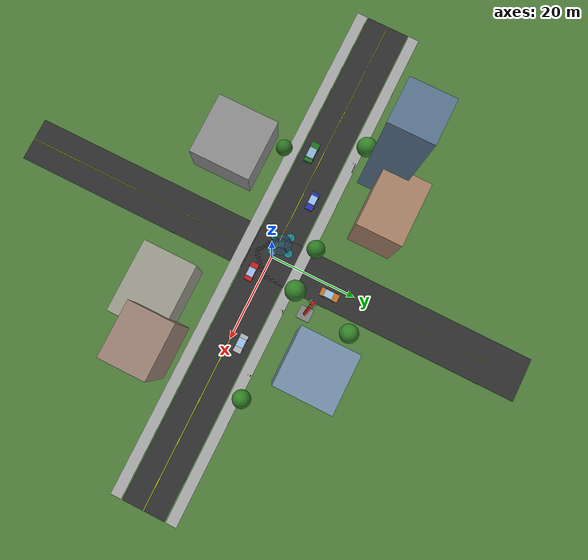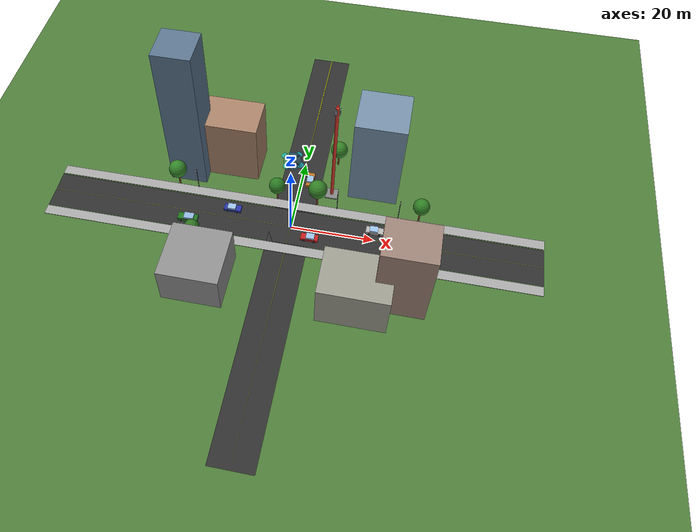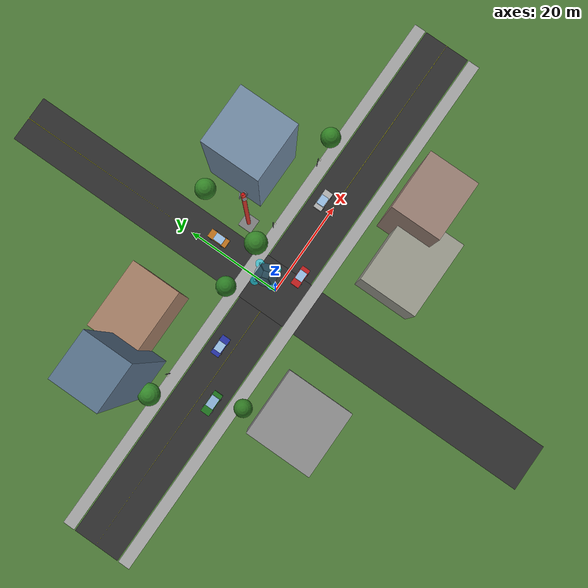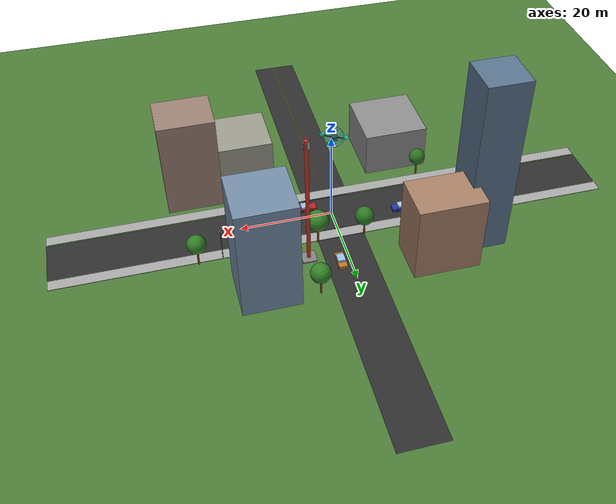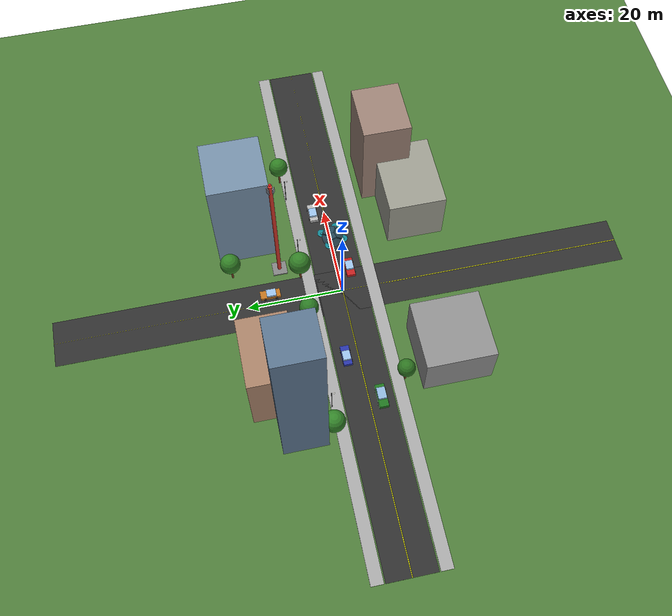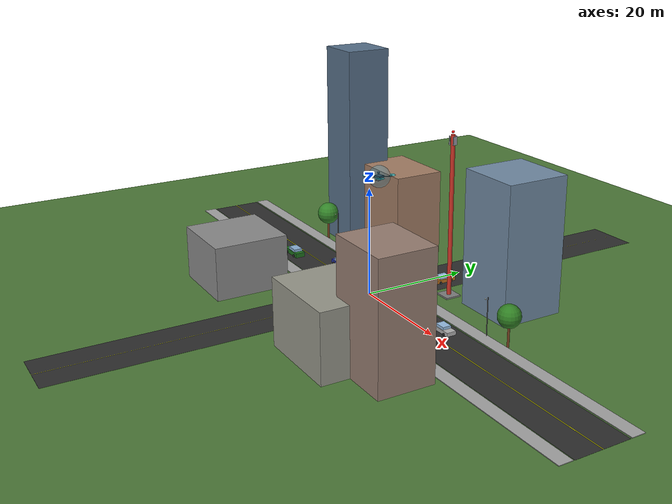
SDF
<?xml version="1.0" encoding="UTF-8"?>
<sdf version="1.9">
  <world name="vla_6g_photo">

    <physics type="ode">
      <max_step_size>0.004</max_step_size>
      <real_time_factor>1.0</real_time_factor>
      <real_time_update_rate>250</real_time_update_rate>
    </physics>
    <gravity>0 0 -9.8</gravity>

    <plugin filename="gz-sim-physics-system" name="gz::sim::systems::Physics"/>
    <plugin filename="gz-sim-scene-broadcaster-system" name="gz::sim::systems::SceneBroadcaster"/>
    <plugin filename="gz-sim-user-commands-system" name="gz::sim::systems::UserCommands"/>
    <plugin filename="gz-sim-sensors-system" name="gz::sim::systems::Sensors">
      <render_engine>ogre2</render_engine>
    </plugin>

    <!-- Bright daytime sky -->
    <scene>
      <grid>false</grid>
      <ambient>0.6 0.6 0.6 1</ambient>
      <background>0.53 0.81 0.92 1</background>
      <shadows>true</shadows>
    </scene>

    <!-- Sun -->
    <light name="sun" type="directional">
      <pose>0 0 500 0 0 0</pose>
      <cast_shadows>true</cast_shadows>
      <intensity>1.2</intensity>
      <direction>-0.4 0.2 -0.85</direction>
      <diffuse>1.0 0.98 0.92 1</diffuse>
      <specular>0.4 0.4 0.4 1</specular>
      <attenuation><range>2000</range><linear>0</linear><constant>1</constant><quadratic>0</quadratic></attenuation>
    </light>
    <light name="fill" type="directional">
      <pose>0 0 300 0 0 0</pose>
      <cast_shadows>false</cast_shadows>
      <intensity>0.3</intensity>
      <direction>0.5 -0.3 -0.7</direction>
      <diffuse>0.7 0.75 0.85 1</diffuse>
      <specular>0.1 0.1 0.1 1</specular>
    </light>

    <!-- Ground plane -->
    <model name="ground_plane">
      <static>true</static>
      <link name="link">
        <collision name="c"><geometry><plane><normal>0 0 1</normal><size>300 300</size></plane></geometry></collision>
        <visual name="v"><geometry><plane><normal>0 0 1</normal><size>300 300</size></plane></geometry>
          <material><ambient>0.25 0.42 0.18 1</ambient><diffuse>0.3 0.48 0.22 1</diffuse></material>
        </visual>
      </link>
    </model>

    <!-- ROADS -->
    <model name="road_x"><static>true</static><pose>0 0 0.01 0 0 0</pose>
      <link name="link">
        <visual name="road"><geometry><box><size>120 10 0.02</size></box></geometry>
          <material><ambient>0.15 0.15 0.15 1</ambient><diffuse>0.18 0.18 0.18 1</diffuse></material></visual>
        <visual name="cline"><pose>0 0 0.005 0 0 0</pose><geometry><box><size>120 0.15 0.01</size></box></geometry>
          <material><ambient>0.9 0.9 0.0 1</ambient><diffuse>1.0 1.0 0.0 1</diffuse></material></visual>
      </link>
    </model>
    <model name="road_y"><static>true</static><pose>0 0 0.01 0 0 1.5708</pose>
      <link name="link">
        <visual name="road"><geometry><box><size>120 10 0.02</size></box></geometry>
          <material><ambient>0.15 0.15 0.15 1</ambient><diffuse>0.18 0.18 0.18 1</diffuse></material></visual>
        <visual name="cline"><pose>0 0 0.005 0 0 0</pose><geometry><box><size>120 0.15 0.01</size></box></geometry>
          <material><ambient>0.9 0.9 0.0 1</ambient><diffuse>1.0 1.0 0.0 1</diffuse></material></visual>
      </link>
    </model>
    <!-- Sidewalks -->
    <model name="sw_n"><static>true</static><pose>0 6.5 0.06 0 0 0</pose>
      <link name="l"><visual name="v"><geometry><box><size>120 2.5 0.12</size></box></geometry>
        <material><ambient>0.55 0.55 0.55 1</ambient><diffuse>0.65 0.65 0.65 1</diffuse></material></visual></link>
    </model>
    <model name="sw_s"><static>true</static><pose>0 -6.5 0.06 0 0 0</pose>
      <link name="l"><visual name="v"><geometry><box><size>120 2.5 0.12</size></box></geometry>
        <material><ambient>0.55 0.55 0.55 1</ambient><diffuse>0.65 0.65 0.65 1</diffuse></material></visual></link>
    </model>

    <!-- BUILDINGS -->
    <model name="b1"><static>true</static><pose>18 18 12.5 0 0 0</pose>
      <link name="l"><collision name="c"><geometry><box><size>12 12 25</size></box></geometry></collision>
        <visual name="v"><geometry><box><size>12 12 25</size></box></geometry>
          <material><ambient>0.4 0.5 0.6 1</ambient><diffuse>0.45 0.55 0.65 1</diffuse></material></visual></link>
    </model>
    <model name="b2"><static>true</static><pose>-18 18 8.5 0 0 0</pose>
      <link name="l"><collision name="c"><geometry><box><size>14 10 17</size></box></geometry></collision>
        <visual name="v"><geometry><box><size>14 10 17</size></box></geometry>
          <material><ambient>0.6 0.45 0.35 1</ambient><diffuse>0.65 0.5 0.4 1</diffuse></material></visual></link>
    </model>
    <model name="b3"><static>true</static><pose>18 -18 6 0 0 0</pose>
      <link name="l"><collision name="c"><geometry><box><size>16 12 12</size></box></geometry></collision>
        <visual name="v"><geometry><box><size>16 12 12</size></box></geometry>
          <material><ambient>0.55 0.55 0.5 1</ambient><diffuse>0.6 0.6 0.55 1</diffuse></material></visual></link>
    </model>
    <model name="b4"><static>true</static><pose>-18 -18 5 0 0 0</pose>
      <link name="l"><collision name="c"><geometry><box><size>14 14 10</size></box></geometry></collision>
        <visual name="v"><geometry><box><size>14 14 10</size></box></geometry>
          <material><ambient>0.45 0.45 0.45 1</ambient><diffuse>0.55 0.55 0.55 1</diffuse></material></visual></link>
    </model>
    <model name="b5"><static>true</static><pose>-28 14 20 0 0 0</pose>
      <link name="l"><collision name="c"><geometry><box><size>9 9 40</size></box></geometry></collision>
        <visual name="v"><geometry><box><size>9 9 40</size></box></geometry>
          <material><ambient>0.3 0.4 0.5 1</ambient><diffuse>0.35 0.45 0.55 1</diffuse></material></visual></link>
    </model>
    <model name="b6"><static>true</static><pose>28 -14 11 0 0 0</pose>
      <link name="l"><collision name="c"><geometry><box><size>12 10 22</size></box></geometry></collision>
        <visual name="v"><geometry><box><size>12 10 22</size></box></geometry>
          <material><ambient>0.55 0.45 0.4 1</ambient><diffuse>0.6 0.5 0.45 1</diffuse></material></visual></link>
    </model>

    <!-- TREES -->
    <model name="t1"><static>true</static><pose>-30 8 0 0 0 0</pose>
      <link name="l">
        <visual name="trunk"><pose>0 0 2 0 0 0</pose><geometry><cylinder><radius>0.22</radius><length>4</length></cylinder></geometry>
          <material><ambient>0.35 0.2 0.1 1</ambient><diffuse>0.45 0.25 0.12 1</diffuse></material></visual>
        <visual name="f"><pose>0 0 5.5 0 0 0</pose><geometry><sphere><radius>2.2</radius></sphere></geometry>
          <material><ambient>0.15 0.42 0.12 1</ambient><diffuse>0.2 0.52 0.16 1</diffuse></material></visual>
      </link>
    </model>
    <model name="t2"><static>true</static><pose>-5 8 0 0 0 0.3</pose>
      <link name="l">
        <visual name="trunk"><pose>0 0 1.8 0 0 0</pose><geometry><cylinder><radius>0.2</radius><length>3.6</length></cylinder></geometry>
          <material><ambient>0.35 0.2 0.1 1</ambient><diffuse>0.45 0.25 0.12 1</diffuse></material></visual>
        <visual name="f"><pose>0 0 5 0 0 0</pose><geometry><sphere><radius>2.0</radius></sphere></geometry>
          <material><ambient>0.12 0.38 0.1 1</ambient><diffuse>0.17 0.48 0.14 1</diffuse></material></visual>
      </link>
    </model>
    <model name="t3"><static>true</static><pose>5 8 0 0 0 0.6</pose>
      <link name="l">
        <visual name="trunk"><pose>0 0 2.2 0 0 0</pose><geometry><cylinder><radius>0.22</radius><length>4.4</length></cylinder></geometry>
          <material><ambient>0.35 0.2 0.1 1</ambient><diffuse>0.45 0.25 0.12 1</diffuse></material></visual>
        <visual name="f"><pose>0 0 6 0 0 0</pose><geometry><sphere><radius>2.3</radius></sphere></geometry>
          <material><ambient>0.15 0.4 0.11 1</ambient><diffuse>0.2 0.5 0.15 1</diffuse></material></visual>
      </link>
    </model>
    <model name="t4"><static>true</static><pose>30 8 0 0 0 0.1</pose>
      <link name="l">
        <visual name="trunk"><pose>0 0 2 0 0 0</pose><geometry><cylinder><radius>0.2</radius><length>4</length></cylinder></geometry>
          <material><ambient>0.35 0.2 0.1 1</ambient><diffuse>0.45 0.25 0.12 1</diffuse></material></visual>
        <visual name="f"><pose>0 0 5.5 0 0 0</pose><geometry><sphere><radius>2.0</radius></sphere></geometry>
          <material><ambient>0.14 0.4 0.1 1</ambient><diffuse>0.19 0.5 0.14 1</diffuse></material></visual>
      </link>
    </model>
    <model name="t5"><static>true</static><pose>-22 -8 0 0 0 0.4</pose>
      <link name="l">
        <visual name="trunk"><pose>0 0 1.9 0 0 0</pose><geometry><cylinder><radius>0.19</radius><length>3.8</length></cylinder></geometry>
          <material><ambient>0.35 0.2 0.1 1</ambient><diffuse>0.45 0.25 0.12 1</diffuse></material></visual>
        <visual name="f"><pose>0 0 5 0 0 0</pose><geometry><sphere><radius>1.8</radius></sphere></geometry>
          <material><ambient>0.13 0.36 0.09 1</ambient><diffuse>0.18 0.46 0.13 1</diffuse></material></visual>
      </link>
    </model>
    <model name="t6"><static>true</static><pose>8 22 0 0 0 0.5</pose>
      <link name="l">
        <visual name="trunk"><pose>0 0 2 0 0 0</pose><geometry><cylinder><radius>0.2</radius><length>4</length></cylinder></geometry>
          <material><ambient>0.35 0.2 0.1 1</ambient><diffuse>0.45 0.25 0.12 1</diffuse></material></visual>
        <visual name="f"><pose>0 0 5.5 0 0 0</pose><geometry><sphere><radius>2.1</radius></sphere></geometry>
          <material><ambient>0.15 0.41 0.12 1</ambient><diffuse>0.2 0.51 0.15 1</diffuse></material></visual>
      </link>
    </model>

    <!-- LIGHT POLES -->
    <model name="lp1"><static>true</static><pose>-25 7.5 0 0 0 0</pose>
      <link name="l">
        <visual name="p"><pose>0 0 3.5 0 0 0</pose><geometry><cylinder><radius>0.08</radius><length>7</length></cylinder></geometry>
          <material><ambient>0.3 0.3 0.3 1</ambient><diffuse>0.4 0.4 0.4 1</diffuse></material></visual>
        <visual name="lamp"><pose>0 -0.5 6.8 0 0 0</pose><geometry><box><size>0.3 0.15 0.1</size></box></geometry>
          <material><ambient>1 1 0.8 1</ambient><diffuse>1 1 0.9 1</diffuse><emissive>0.6 0.6 0.4 1</emissive></material></visual>
      </link>
    </model>
    <model name="lp2"><static>true</static><pose>10 7.5 0 0 0 0</pose>
      <link name="l">
        <visual name="p"><pose>0 0 3.5 0 0 0</pose><geometry><cylinder><radius>0.08</radius><length>7</length></cylinder></geometry>
          <material><ambient>0.3 0.3 0.3 1</ambient><diffuse>0.4 0.4 0.4 1</diffuse></material></visual>
        <visual name="lamp"><pose>0 -0.5 6.8 0 0 0</pose><geometry><box><size>0.3 0.15 0.1</size></box></geometry>
          <material><ambient>1 1 0.8 1</ambient><diffuse>1 1 0.9 1</diffuse><emissive>0.6 0.6 0.4 1</emissive></material></visual>
      </link>
    </model>
    <model name="lp3"><static>true</static><pose>25 7.5 0 0 0 0</pose>
      <link name="l">
        <visual name="p"><pose>0 0 3.5 0 0 0</pose><geometry><cylinder><radius>0.08</radius><length>7</length></cylinder></geometry>
          <material><ambient>0.3 0.3 0.3 1</ambient><diffuse>0.4 0.4 0.4 1</diffuse></material></visual>
        <visual name="lamp"><pose>0 -0.5 6.8 0 0 0</pose><geometry><box><size>0.3 0.15 0.1</size></box></geometry>
          <material><ambient>1 1 0.8 1</ambient><diffuse>1 1 0.9 1</diffuse><emissive>0.6 0.6 0.4 1</emissive></material></visual>
      </link>
    </model>

    <!-- RSU TOWER -->
    <model name="bs_tower"><static>true</static><pose>8 12 0 0 0 0</pose>
      <link name="l">
        <visual name="tower"><pose>0 0 15 0 0 0</pose><geometry><cylinder><radius>0.4</radius><length>30</length></cylinder></geometry>
          <material><ambient>0.7 0.15 0.1 1</ambient><diffuse>0.8 0.2 0.15 1</diffuse></material></visual>
        <collision name="tc"><pose>0 0 15 0 0 0</pose><geometry><cylinder><radius>0.4</radius><length>30</length></cylinder></geometry></collision>
        <visual name="a1"><pose>0.6 0 29 0 0 0</pose><geometry><box><size>0.15 0.8 1.5</size></box></geometry>
          <material><ambient>0.5 0.5 0.55 1</ambient><diffuse>0.6 0.6 0.65 1</diffuse></material></visual>
        <visual name="a2"><pose>-0.3 0.52 29 0 0 2.094</pose><geometry><box><size>0.15 0.8 1.5</size></box></geometry>
          <material><ambient>0.5 0.5 0.55 1</ambient><diffuse>0.6 0.6 0.65 1</diffuse></material></visual>
        <visual name="a3"><pose>-0.3 -0.52 29 0 0 -2.094</pose><geometry><box><size>0.15 0.8 1.5</size></box></geometry>
          <material><ambient>0.5 0.5 0.55 1</ambient><diffuse>0.6 0.6 0.65 1</diffuse></material></visual>
        <visual name="beacon"><pose>0 0 30.5 0 0 0</pose><geometry><sphere><radius>0.25</radius></sphere></geometry>
          <material><ambient>1 0 0 1</ambient><diffuse>1 0.1 0.1 1</diffuse><emissive>0.8 0 0 1</emissive></material></visual>
        <visual name="base"><pose>0 0 0.15 0 0 0</pose><geometry><box><size>3 3 0.3</size></box></geometry>
          <material><ambient>0.4 0.4 0.4 1</ambient><diffuse>0.5 0.5 0.5 1</diffuse></material></visual>
      </link>
    </model>

    <!-- ========== CARS (body + cabin + wheels) ========== -->
    <!-- Car 1: Blue sedan, eastbound -->
    <model name="car1"><static>true</static><pose>-15 2.5 0 0 0 0</pose>
      <link name="l">
        <visual name="body"><pose>0 0 0.45 0 0 0</pose><geometry><box><size>4.2 1.8 0.7</size></box></geometry>
          <material><ambient>0.1 0.15 0.55 1</ambient><diffuse>0.15 0.2 0.65 1</diffuse></material></visual>
        <visual name="cabin"><pose>-0.2 0 1.0 0 0 0</pose><geometry><box><size>2.0 1.6 0.6</size></box></geometry>
          <material><ambient>0.5 0.65 0.8 1</ambient><diffuse>0.6 0.75 0.9 1</diffuse></material></visual>
        <visual name="wfl"><pose>1.2 0.95 0.25 1.5708 0 0</pose><geometry><cylinder><radius>0.25</radius><length>0.18</length></cylinder></geometry>
          <material><ambient>0.15 0.15 0.15 1</ambient><diffuse>0.2 0.2 0.2 1</diffuse></material></visual>
        <visual name="wfr"><pose>1.2 -0.95 0.25 1.5708 0 0</pose><geometry><cylinder><radius>0.25</radius><length>0.18</length></cylinder></geometry>
          <material><ambient>0.15 0.15 0.15 1</ambient><diffuse>0.2 0.2 0.2 1</diffuse></material></visual>
        <visual name="wrl"><pose>-1.2 0.95 0.25 1.5708 0 0</pose><geometry><cylinder><radius>0.25</radius><length>0.18</length></cylinder></geometry>
          <material><ambient>0.15 0.15 0.15 1</ambient><diffuse>0.2 0.2 0.2 1</diffuse></material></visual>
        <visual name="wrr"><pose>-1.2 -0.95 0.25 1.5708 0 0</pose><geometry><cylinder><radius>0.25</radius><length>0.18</length></cylinder></geometry>
          <material><ambient>0.15 0.15 0.15 1</ambient><diffuse>0.2 0.2 0.2 1</diffuse></material></visual>
      </link>
    </model>

    <!-- Car 2: Red sedan, westbound -->
    <model name="car2"><static>true</static><pose>5 -2.5 0 0 0 3.14159</pose>
      <link name="l">
        <visual name="body"><pose>0 0 0.45 0 0 0</pose><geometry><box><size>4.2 1.8 0.7</size></box></geometry>
          <material><ambient>0.6 0.08 0.08 1</ambient><diffuse>0.75 0.12 0.12 1</diffuse></material></visual>
        <visual name="cabin"><pose>-0.2 0 1.0 0 0 0</pose><geometry><box><size>2.0 1.6 0.6</size></box></geometry>
          <material><ambient>0.5 0.65 0.8 1</ambient><diffuse>0.6 0.75 0.9 1</diffuse></material></visual>
        <visual name="wfl"><pose>1.2 0.95 0.25 1.5708 0 0</pose><geometry><cylinder><radius>0.25</radius><length>0.18</length></cylinder></geometry>
          <material><ambient>0.15 0.15 0.15 1</ambient><diffuse>0.2 0.2 0.2 1</diffuse></material></visual>
        <visual name="wfr"><pose>1.2 -0.95 0.25 1.5708 0 0</pose><geometry><cylinder><radius>0.25</radius><length>0.18</length></cylinder></geometry>
          <material><ambient>0.15 0.15 0.15 1</ambient><diffuse>0.2 0.2 0.2 1</diffuse></material></visual>
        <visual name="wrl"><pose>-1.2 0.95 0.25 1.5708 0 0</pose><geometry><cylinder><radius>0.25</radius><length>0.18</length></cylinder></geometry>
          <material><ambient>0.15 0.15 0.15 1</ambient><diffuse>0.2 0.2 0.2 1</diffuse></material></visual>
        <visual name="wrr"><pose>-1.2 -0.95 0.25 1.5708 0 0</pose><geometry><cylinder><radius>0.25</radius><length>0.18</length></cylinder></geometry>
          <material><ambient>0.15 0.15 0.15 1</ambient><diffuse>0.2 0.2 0.2 1</diffuse></material></visual>
      </link>
    </model>

    <!-- Car 3: Silver sedan, eastbound -->
    <model name="car3"><static>true</static><pose>20 2.5 0 0 0 0</pose>
      <link name="l">
        <visual name="body"><pose>0 0 0.45 0 0 0</pose><geometry><box><size>4.2 1.8 0.7</size></box></geometry>
          <material><ambient>0.55 0.55 0.55 1</ambient><diffuse>0.7 0.7 0.7 1</diffuse></material></visual>
        <visual name="cabin"><pose>-0.2 0 1.0 0 0 0</pose><geometry><box><size>2.0 1.6 0.6</size></box></geometry>
          <material><ambient>0.5 0.65 0.8 1</ambient><diffuse>0.6 0.75 0.9 1</diffuse></material></visual>
        <visual name="wfl"><pose>1.2 0.95 0.25 1.5708 0 0</pose><geometry><cylinder><radius>0.25</radius><length>0.18</length></cylinder></geometry>
          <material><ambient>0.15 0.15 0.15 1</ambient><diffuse>0.2 0.2 0.2 1</diffuse></material></visual>
        <visual name="wfr"><pose>1.2 -0.95 0.25 1.5708 0 0</pose><geometry><cylinder><radius>0.25</radius><length>0.18</length></cylinder></geometry>
          <material><ambient>0.15 0.15 0.15 1</ambient><diffuse>0.2 0.2 0.2 1</diffuse></material></visual>
        <visual name="wrl"><pose>-1.2 0.95 0.25 1.5708 0 0</pose><geometry><cylinder><radius>0.25</radius><length>0.18</length></cylinder></geometry>
          <material><ambient>0.15 0.15 0.15 1</ambient><diffuse>0.2 0.2 0.2 1</diffuse></material></visual>
        <visual name="wrr"><pose>-1.2 -0.95 0.25 1.5708 0 0</pose><geometry><cylinder><radius>0.25</radius><length>0.18</length></cylinder></geometry>
          <material><ambient>0.15 0.15 0.15 1</ambient><diffuse>0.2 0.2 0.2 1</diffuse></material></visual>
      </link>
    </model>

    <!-- Car 4: Green SUV, westbound -->
    <model name="car4"><static>true</static><pose>-25 -2.5 0 0 0 3.14159</pose>
      <link name="l">
        <visual name="body"><pose>0 0 0.55 0 0 0</pose><geometry><box><size>4.8 1.9 0.9</size></box></geometry>
          <material><ambient>0.08 0.35 0.08 1</ambient><diffuse>0.12 0.45 0.12 1</diffuse></material></visual>
        <visual name="cabin"><pose>-0.3 0 1.2 0 0 0</pose><geometry><box><size>2.4 1.7 0.7</size></box></geometry>
          <material><ambient>0.45 0.6 0.75 1</ambient><diffuse>0.55 0.7 0.85 1</diffuse></material></visual>
        <visual name="wfl"><pose>1.4 1.0 0.3 1.5708 0 0</pose><geometry><cylinder><radius>0.3</radius><length>0.2</length></cylinder></geometry>
          <material><ambient>0.15 0.15 0.15 1</ambient><diffuse>0.2 0.2 0.2 1</diffuse></material></visual>
        <visual name="wfr"><pose>1.4 -1.0 0.3 1.5708 0 0</pose><geometry><cylinder><radius>0.3</radius><length>0.2</length></cylinder></geometry>
          <material><ambient>0.15 0.15 0.15 1</ambient><diffuse>0.2 0.2 0.2 1</diffuse></material></visual>
        <visual name="wrl"><pose>-1.4 1.0 0.3 1.5708 0 0</pose><geometry><cylinder><radius>0.3</radius><length>0.2</length></cylinder></geometry>
          <material><ambient>0.15 0.15 0.15 1</ambient><diffuse>0.2 0.2 0.2 1</diffuse></material></visual>
        <visual name="wrr"><pose>-1.4 -1.0 0.3 1.5708 0 0</pose><geometry><cylinder><radius>0.3</radius><length>0.2</length></cylinder></geometry>
          <material><ambient>0.15 0.15 0.15 1</ambient><diffuse>0.2 0.2 0.2 1</diffuse></material></visual>
      </link>
    </model>

    <!-- Car 5: Orange sedan, northbound on cross road -->
    <model name="car5"><static>true</static><pose>2 15 0 0 0 1.5708</pose>
      <link name="l">
        <visual name="body"><pose>0 0 0.45 0 0 0</pose><geometry><box><size>4.2 1.8 0.7</size></box></geometry>
          <material><ambient>0.6 0.35 0.08 1</ambient><diffuse>0.75 0.45 0.12 1</diffuse></material></visual>
        <visual name="cabin"><pose>-0.2 0 1.0 0 0 0</pose><geometry><box><size>2.0 1.6 0.6</size></box></geometry>
          <material><ambient>0.5 0.65 0.8 1</ambient><diffuse>0.6 0.75 0.9 1</diffuse></material></visual>
        <visual name="wfl"><pose>1.2 0.95 0.25 1.5708 0 0</pose><geometry><cylinder><radius>0.25</radius><length>0.18</length></cylinder></geometry>
          <material><ambient>0.15 0.15 0.15 1</ambient><diffuse>0.2 0.2 0.2 1</diffuse></material></visual>
        <visual name="wfr"><pose>1.2 -0.95 0.25 1.5708 0 0</pose><geometry><cylinder><radius>0.25</radius><length>0.18</length></cylinder></geometry>
          <material><ambient>0.15 0.15 0.15 1</ambient><diffuse>0.2 0.2 0.2 1</diffuse></material></visual>
        <visual name="wrl"><pose>-1.2 0.95 0.25 1.5708 0 0</pose><geometry><cylinder><radius>0.25</radius><length>0.18</length></cylinder></geometry>
          <material><ambient>0.15 0.15 0.15 1</ambient><diffuse>0.2 0.2 0.2 1</diffuse></material></visual>
        <visual name="wrr"><pose>-1.2 -0.95 0.25 1.5708 0 0</pose><geometry><cylinder><radius>0.25</radius><length>0.18</length></cylinder></geometry>
          <material><ambient>0.15 0.15 0.15 1</ambient><diffuse>0.2 0.2 0.2 1</diffuse></material></visual>
      </link>
    </model>

    <!-- X500 QUADROTOR hovering (enlarged 3x for visibility) -->
    <model name="x500_uav_visual">
      <static>true</static>
      <pose>0 2 22 0 0 0.3</pose>
      <link name="body">
        <!-- Main fuselage -->
        <visual name="fuselage">
          <pose>0 0 0 0 0 0</pose>
          <geometry><box><size>1.2 1.2 0.4</size></box></geometry>
          <material><ambient>0.15 0.15 0.15 1</ambient><diffuse>0.2 0.2 0.2 1</diffuse></material>
        </visual>
        <!-- Arms -->
        <visual name="arm_fr"><pose>0.9 -0.9 0 0 0 -0.785</pose><geometry><box><size>1.8 0.15 0.12</size></box></geometry>
          <material><ambient>0.1 0.1 0.1 1</ambient><diffuse>0.15 0.15 0.15 1</diffuse></material></visual>
        <visual name="arm_fl"><pose>0.9 0.9 0 0 0 0.785</pose><geometry><box><size>1.8 0.15 0.12</size></box></geometry>
          <material><ambient>0.1 0.1 0.1 1</ambient><diffuse>0.15 0.15 0.15 1</diffuse></material></visual>
        <visual name="arm_rr"><pose>-0.9 -0.9 0 0 0 0.785</pose><geometry><box><size>1.8 0.15 0.12</size></box></geometry>
          <material><ambient>0.1 0.1 0.1 1</ambient><diffuse>0.15 0.15 0.15 1</diffuse></material></visual>
        <visual name="arm_rl"><pose>-0.9 0.9 0 0 0 -0.785</pose><geometry><box><size>1.8 0.15 0.12</size></box></geometry>
          <material><ambient>0.1 0.1 0.1 1</ambient><diffuse>0.15 0.15 0.15 1</diffuse></material></visual>
        <!-- Motor pods (4) -->
        <visual name="m_fr"><pose>1.5 -1.5 0.1 0 0 0</pose><geometry><cylinder><radius>0.2</radius><length>0.25</length></cylinder></geometry>
          <material><ambient>0.3 0.3 0.3 1</ambient><diffuse>0.35 0.35 0.35 1</diffuse></material></visual>
        <visual name="m_fl"><pose>1.5 1.5 0.1 0 0 0</pose><geometry><cylinder><radius>0.2</radius><length>0.25</length></cylinder></geometry>
          <material><ambient>0.3 0.3 0.3 1</ambient><diffuse>0.35 0.35 0.35 1</diffuse></material></visual>
        <visual name="m_rr"><pose>-1.5 -1.5 0.1 0 0 0</pose><geometry><cylinder><radius>0.2</radius><length>0.25</length></cylinder></geometry>
          <material><ambient>0.3 0.3 0.3 1</ambient><diffuse>0.35 0.35 0.35 1</diffuse></material></visual>
        <visual name="m_rl"><pose>-1.5 1.5 0.1 0 0 0</pose><geometry><cylinder><radius>0.2</radius><length>0.25</length></cylinder></geometry>
          <material><ambient>0.3 0.3 0.3 1</ambient><diffuse>0.35 0.35 0.35 1</diffuse></material></visual>
        <!-- Propeller discs (translucent cyan for visibility) -->
        <visual name="prop_fr"><pose>1.5 -1.5 0.25 0 0 0</pose><geometry><cylinder><radius>0.8</radius><length>0.03</length></cylinder></geometry>
          <material><ambient>0.0 0.8 1.0 0.5</ambient><diffuse>0.0 0.9 1.0 0.5</diffuse><emissive>0.0 0.3 0.4 1</emissive></material></visual>
        <visual name="prop_fl"><pose>1.5 1.5 0.25 0 0 0</pose><geometry><cylinder><radius>0.8</radius><length>0.03</length></cylinder></geometry>
          <material><ambient>0.0 0.8 1.0 0.5</ambient><diffuse>0.0 0.9 1.0 0.5</diffuse><emissive>0.0 0.3 0.4 1</emissive></material></visual>
        <visual name="prop_rr"><pose>-1.5 -1.5 0.25 0 0 0</pose><geometry><cylinder><radius>0.8</radius><length>0.03</length></cylinder></geometry>
          <material><ambient>0.0 0.8 1.0 0.5</ambient><diffuse>0.0 0.9 1.0 0.5</diffuse><emissive>0.0 0.3 0.4 1</emissive></material></visual>
        <visual name="prop_rl"><pose>-1.5 1.5 0.25 0 0 0</pose><geometry><cylinder><radius>0.8</radius><length>0.03</length></cylinder></geometry>
          <material><ambient>0.0 0.8 1.0 0.5</ambient><diffuse>0.0 0.9 1.0 0.5</diffuse><emissive>0.0 0.3 0.4 1</emissive></material></visual>
        <!-- Landing gear legs -->
        <visual name="leg_l"><pose>0 0.6 -0.35 0 0 0</pose><geometry><cylinder><radius>0.04</radius><length>0.5</length></cylinder></geometry>
          <material><ambient>0.3 0.3 0.3 1</ambient><diffuse>0.35 0.35 0.35 1</diffuse></material></visual>
        <visual name="leg_r"><pose>0 -0.6 -0.35 0 0 0</pose><geometry><cylinder><radius>0.04</radius><length>0.5</length></cylinder></geometry>
          <material><ambient>0.3 0.3 0.3 1</ambient><diffuse>0.35 0.35 0.35 1</diffuse></material></visual>
        <visual name="skid_l"><pose>0 0.6 -0.6 0 1.5708 0</pose><geometry><cylinder><radius>0.03</radius><length>1.0</length></cylinder></geometry>
          <material><ambient>0.3 0.3 0.3 1</ambient><diffuse>0.35 0.35 0.35 1</diffuse></material></visual>
        <visual name="skid_r"><pose>0 -0.6 -0.6 0 1.5708 0</pose><geometry><cylinder><radius>0.03</radius><length>1.0</length></cylinder></geometry>
          <material><ambient>0.3 0.3 0.3 1</ambient><diffuse>0.35 0.35 0.35 1</diffuse></material></visual>
        <!-- Glow sphere for visibility -->
        <visual name="glow"><pose>0 0 0 0 0 0</pose><geometry><sphere><radius>2.0</radius></sphere></geometry>
          <material><ambient>0.0 0.6 1.0 0.12</ambient><diffuse>0.0 0.7 1.0 0.12</diffuse><emissive>0.0 0.2 0.4 1</emissive></material>
          <transparency>0.85</transparency></visual>
      </link>
    </model>

    <!-- ========== CAMERA for screenshot ========== -->
    <model name="photo_camera">
      <static>true</static>
      <pose>-48 -38 38 0 0.45 0.68</pose>
      <link name="link">
        <sensor name="camera" type="camera">
          <camera>
            <horizontal_fov>1.2</horizontal_fov>
            <image>
              <width>1920</width>
              <height>1080</height>
              <format>R8G8B8</format>
            </image>
            <clip><near>0.1</near><far>500</far></clip>
          </camera>
          <always_on>true</always_on>
          <update_rate>1</update_rate>
          <visualize>false</visualize>
          <topic>/photo_camera</topic>
        </sensor>
      </link>
    </model>

  </world>
</sdf>
